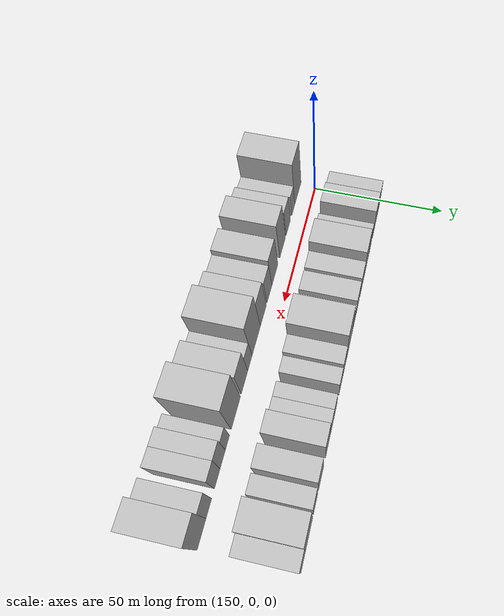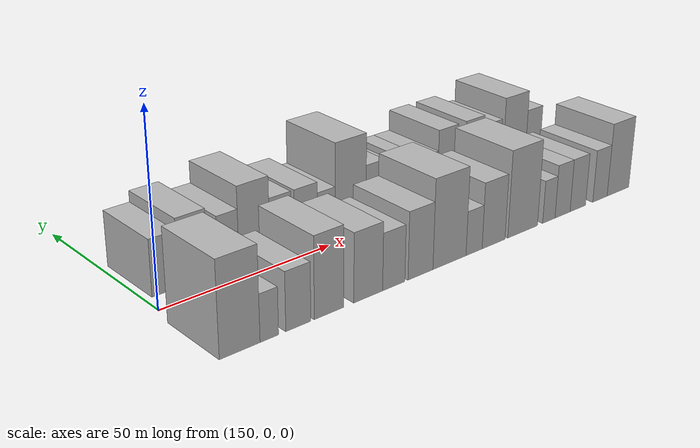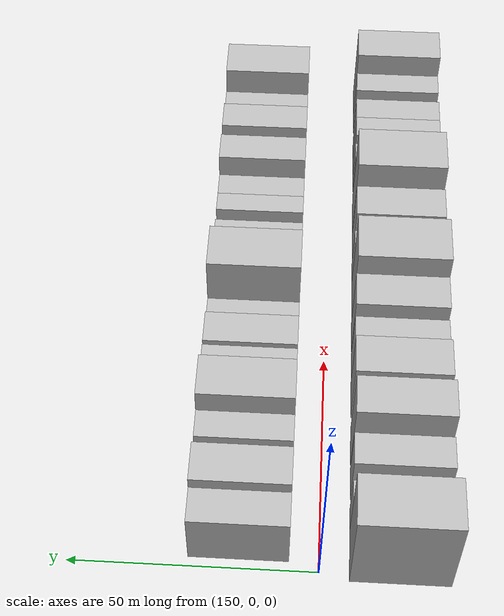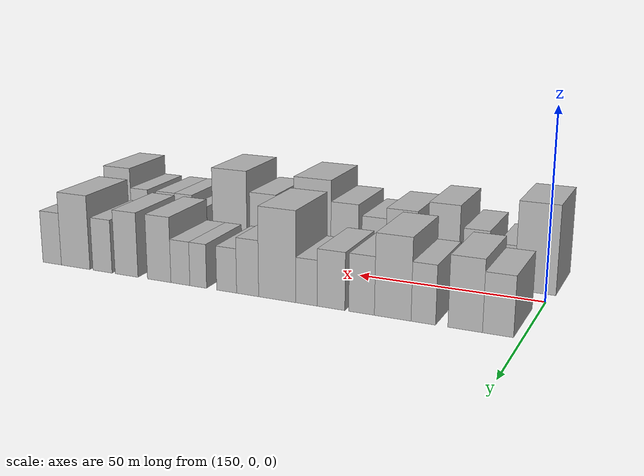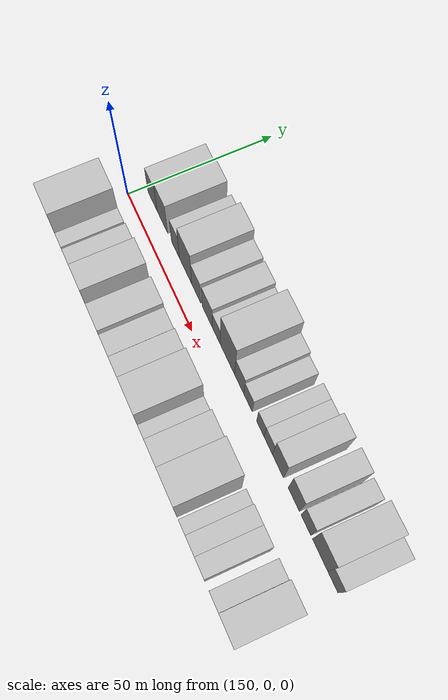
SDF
<sdf version="1.6">
 <world name="default">
  <model name="building_16">
   <static>1</static>
   <pose>155.6822 16.0000 0 0.000000 0.000000 1.570796</pose>
   <link name="link">
    <pose>0 0 7.50 0 0 0</pose>
    <collision name="collision"><geometry><box><size>20.0000 7.2989 15.0000</size></box></geometry></collision>
    <visual name="visual">
     <cast_shadows>0</cast_shadows>
     <geometry><box><size>20.0000 7.2989 15.0000</size></box></geometry>
     <material>
      <script>
       <uri>model://HANNAS_wall/materials/scripts</uri>
       <uri>model://HANNAS_wall/materials/textures</uri>
       <name>vrc/HANNAS_wall</name>
      </script>
     </material>
    </visual>
   </link>
  </model>
  <model name="building_17">
   <static>1</static>
   <pose>163.4981 16.0000 0 0.000000 0.000000 1.570796</pose>
   <link name="link">
    <pose>0 0 9.00 0 0 0</pose>
    <collision name="collision"><geometry><box><size>20.0000 8.3329 18.0000</size></box></geometry></collision>
    <visual name="visual">
     <cast_shadows>0</cast_shadows>
     <geometry><box><size>20.0000 8.3329 18.0000</size></box></geometry>
     <material>
      <script>
       <uri>model://HANNAS_wall/materials/scripts</uri>
       <uri>model://HANNAS_wall/materials/textures</uri>
       <name>vrc/HANNAS_wall</name>
      </script>
     </material>
    </visual>
   </link>
  </model>
  <model name="building_18">
   <static>1</static>
   <pose>173.7253 16.0000 0 0.000000 0.000000 1.570796</pose>
   <link name="link">
    <pose>0 0 7.50 0 0 0</pose>
    <collision name="collision"><geometry><box><size>20.0000 6.1214 15.0000</size></box></geometry></collision>
    <visual name="visual">
     <cast_shadows>0</cast_shadows>
     <geometry><box><size>20.0000 6.1214 15.0000</size></box></geometry>
     <material>
      <script>
       <uri>model://HANNAS_wall/materials/scripts</uri>
       <uri>model://HANNAS_wall/materials/textures</uri>
       <name>vrc/HANNAS_wall</name>
      </script>
     </material>
    </visual>
   </link>
  </model>
  <model name="building_19">
   <static>1</static>
   <pose>181.4577 16.0000 0 0.000000 0.000000 1.570796</pose>
   <link name="link">
    <pose>0 0 10.50 0 0 0</pose>
    <collision name="collision"><geometry><box><size>20.0000 9.3434 21.0000</size></box></geometry></collision>
    <visual name="visual">
     <cast_shadows>0</cast_shadows>
     <geometry><box><size>20.0000 9.3434 21.0000</size></box></geometry>
     <material>
      <script>
       <uri>model://HANNAS_wall/materials/scripts</uri>
       <uri>model://HANNAS_wall/materials/textures</uri>
       <name>vrc/HANNAS_wall</name>
      </script>
     </material>
    </visual>
   </link>
  </model>
  <model name="building_20">
   <static>1</static>
   <pose>189.4932 16.0000 0 0.000000 0.000000 1.570796</pose>
   <link name="link">
    <pose>0 0 7.50 0 0 0</pose>
    <collision name="collision"><geometry><box><size>20.0000 6.7278 15.0000</size></box></geometry></collision>
    <visual name="visual">
     <cast_shadows>0</cast_shadows>
     <geometry><box><size>20.0000 6.7278 15.0000</size></box></geometry>
     <material>
      <script>
       <uri>model://HANNAS_wall/materials/scripts</uri>
       <uri>model://HANNAS_wall/materials/textures</uri>
       <name>vrc/HANNAS_wall</name>
      </script>
     </material>
    </visual>
   </link>
  </model>
  <model name="building_21">
   <static>1</static>
   <pose>197.5822 16.0000 0 0.000000 0.000000 1.570796</pose>
   <link name="link">
    <pose>0 0 7.50 0 0 0</pose>
    <collision name="collision"><geometry><box><size>20.0000 7.4502 15.0000</size></box></geometry></collision>
    <visual name="visual">
     <cast_shadows>0</cast_shadows>
     <geometry><box><size>20.0000 7.4502 15.0000</size></box></geometry>
     <material>
      <script>
       <uri>model://HANNAS_wall/materials/scripts</uri>
       <uri>model://HANNAS_wall/materials/textures</uri>
       <name>vrc/HANNAS_wall</name>
      </script>
     </material>
    </visual>
   </link>
  </model>
  <model name="building_22">
   <static>1</static>
   <pose>204.2305 16.0000 0 0.000000 0.000000 1.570796</pose>
   <link name="link">
    <pose>0 0 6.00 0 0 0</pose>
    <collision name="collision"><geometry><box><size>20.0000 5.8465 12.0000</size></box></geometry></collision>
    <visual name="visual">
     <cast_shadows>0</cast_shadows>
     <geometry><box><size>20.0000 5.8465 12.0000</size></box></geometry>
     <material>
      <script>
       <uri>model://HANNAS_wall/materials/scripts</uri>
       <uri>model://HANNAS_wall/materials/textures</uri>
       <name>vrc/HANNAS_wall</name>
      </script>
     </material>
    </visual>
   </link>
  </model>
  <model name="building_23">
   <static>1</static>
   <pose>212.3700 16.0000 0 0.000000 0.000000 1.570796</pose>
   <link name="link">
    <pose>0 0 12.00 0 0 0</pose>
    <collision name="collision"><geometry><box><size>20.0000 10.4324 24.0000</size></box></geometry></collision>
    <visual name="visual">
     <cast_shadows>0</cast_shadows>
     <geometry><box><size>20.0000 10.4324 24.0000</size></box></geometry>
     <material>
      <script>
       <uri>model://HANNAS_wall/materials/scripts</uri>
       <uri>model://HANNAS_wall/materials/textures</uri>
       <name>vrc/HANNAS_wall</name>
      </script>
     </material>
    </visual>
   </link>
  </model>
  <model name="building_24">
   <static>1</static>
   <pose>220.7596 16.0000 0 0.000000 0.000000 1.570796</pose>
   <link name="link">
    <pose>0 0 7.50 0 0 0</pose>
    <collision name="collision"><geometry><box><size>20.0000 6.3466 15.0000</size></box></geometry></collision>
    <visual name="visual">
     <cast_shadows>0</cast_shadows>
     <geometry><box><size>20.0000 6.3466 15.0000</size></box></geometry>
     <material>
      <script>
       <uri>model://HANNAS_wall/materials/scripts</uri>
       <uri>model://HANNAS_wall/materials/textures</uri>
       <name>vrc/HANNAS_wall</name>
      </script>
     </material>
    </visual>
   </link>
  </model>
  <model name="building_25">
   <static>1</static>
   <pose>226.8524 16.0000 0 0.000000 0.000000 1.570796</pose>
   <link name="link">
    <pose>0 0 6.00 0 0 0</pose>
    <collision name="collision"><geometry><box><size>20.0000 5.8391 12.0000</size></box></geometry></collision>
    <visual name="visual">
     <cast_shadows>0</cast_shadows>
     <geometry><box><size>20.0000 5.8391 12.0000</size></box></geometry>
     <material>
      <script>
       <uri>model://HANNAS_wall/materials/scripts</uri>
       <uri>model://HANNAS_wall/materials/textures</uri>
       <name>vrc/HANNAS_wall</name>
      </script>
     </material>
    </visual>
   </link>
  </model>
  <model name="building_26">
   <static>1</static>
   <pose>235.2844 16.0000 0 0.000000 0.000000 1.570796</pose>
   <link name="link">
    <pose>0 0 6.00 0 0 0</pose>
    <collision name="collision"><geometry><box><size>20.0000 5.0248 12.0000</size></box></geometry></collision>
    <visual name="visual">
     <cast_shadows>0</cast_shadows>
     <geometry><box><size>20.0000 5.0248 12.0000</size></box></geometry>
     <material>
      <script>
       <uri>model://HANNAS_wall/materials/scripts</uri>
       <uri>model://HANNAS_wall/materials/textures</uri>
       <name>vrc/HANNAS_wall</name>
      </script>
     </material>
    </visual>
   </link>
  </model>
  <model name="building_27">
   <static>1</static>
   <pose>240.6908 16.0000 0 0.000000 0.000000 1.570796</pose>
   <link name="link">
    <pose>0 0 6.00 0 0 0</pose>
    <collision name="collision"><geometry><box><size>20.0000 5.7879 12.0000</size></box></geometry></collision>
    <visual name="visual">
     <cast_shadows>0</cast_shadows>
     <geometry><box><size>20.0000 5.7879 12.0000</size></box></geometry>
     <material>
      <script>
       <uri>model://HANNAS_wall/materials/scripts</uri>
       <uri>model://HANNAS_wall/materials/textures</uri>
       <name>vrc/HANNAS_wall</name>
      </script>
     </material>
    </visual>
   </link>
  </model>
  <model name="building_28">
   <static>1</static>
   <pose>247.2457 16.0000 0 0.000000 0.000000 1.570796</pose>
   <link name="link">
    <pose>0 0 9.00 0 0 0</pose>
    <collision name="collision"><geometry><box><size>20.0000 7.3219 18.0000</size></box></geometry></collision>
    <visual name="visual">
     <cast_shadows>0</cast_shadows>
     <geometry><box><size>20.0000 7.3219 18.0000</size></box></geometry>
     <material>
      <script>
       <uri>model://HANNAS_wall/materials/scripts</uri>
       <uri>model://HANNAS_wall/materials/textures</uri>
       <name>vrc/HANNAS_wall</name>
      </script>
     </material>
    </visual>
   </link>
  </model>
  <model name="building_29">
   <static>1</static>
   <pose>257.5737 16.0000 0 0.000000 0.000000 1.570796</pose>
   <link name="link">
    <pose>0 0 9.00 0 0 0</pose>
    <collision name="collision"><geometry><box><size>20.0000 7.3342 18.0000</size></box></geometry></collision>
    <visual name="visual">
     <cast_shadows>0</cast_shadows>
     <geometry><box><size>20.0000 7.3342 18.0000</size></box></geometry>
     <material>
      <script>
       <uri>model://HANNAS_wall/materials/scripts</uri>
       <uri>model://HANNAS_wall/materials/textures</uri>
       <name>vrc/HANNAS_wall</name>
      </script>
     </material>
    </visual>
   </link>
  </model>
  <model name="building_30">
   <static>1</static>
   <pose>265.3771 16.0000 0 0.000000 0.000000 1.570796</pose>
   <link name="link">
    <pose>0 0 7.50 0 0 0</pose>
    <collision name="collision"><geometry><box><size>20.0000 6.2727 15.0000</size></box></geometry></collision>
    <visual name="visual">
     <cast_shadows>0</cast_shadows>
     <geometry><box><size>20.0000 6.2727 15.0000</size></box></geometry>
     <material>
      <script>
       <uri>model://HANNAS_wall/materials/scripts</uri>
       <uri>model://HANNAS_wall/materials/textures</uri>
       <name>vrc/HANNAS_wall</name>
      </script>
     </material>
    </visual>
   </link>
  </model>
  <model name="building_31">
   <static>1</static>
   <pose>274.3056 16.0000 0 0.000000 0.000000 1.570796</pose>
   <link name="link">
    <pose>0 0 10.50 0 0 0</pose>
    <collision name="collision"><geometry><box><size>20.0000 9.5843 21.0000</size></box></geometry></collision>
    <visual name="visual">
     <cast_shadows>0</cast_shadows>
     <geometry><box><size>20.0000 9.5843 21.0000</size></box></geometry>
     <material>
      <script>
       <uri>model://HANNAS_wall/materials/scripts</uri>
       <uri>model://HANNAS_wall/materials/textures</uri>
       <name>vrc/HANNAS_wall</name>
      </script>
     </material>
    </visual>
   </link>
  </model>
  <model name="building_32">
   <static>1</static>
   <pose>282.2590 16.0000 0 0.000000 0.000000 1.570796</pose>
   <link name="link">
    <pose>0 0 7.50 0 0 0</pose>
    <collision name="collision"><geometry><box><size>20.0000 6.3225 15.0000</size></box></geometry></collision>
    <visual name="visual">
     <cast_shadows>0</cast_shadows>
     <geometry><box><size>20.0000 6.3225 15.0000</size></box></geometry>
     <material>
      <script>
       <uri>model://HANNAS_wall/materials/scripts</uri>
       <uri>model://HANNAS_wall/materials/textures</uri>
       <name>vrc/HANNAS_wall</name>
      </script>
     </material>
    </visual>
   </link>
  </model>
  <model name="building_48">
   <static>1</static>
   <pose>153.9124 -16.0000 0 0.000000 0.000000 1.570796</pose>
   <link name="link">
    <pose>0 0 12.00 0 0 0</pose>
    <collision name="collision"><geometry><box><size>20.0000 10.7325 24.0000</size></box></geometry></collision>
    <visual name="visual">
     <cast_shadows>0</cast_shadows>
     <geometry><box><size>20.0000 10.7325 24.0000</size></box></geometry>
     <material>
      <script>
       <uri>model://HANNAS_wall/materials/scripts</uri>
       <uri>model://HANNAS_wall/materials/textures</uri>
       <name>vrc/HANNAS_wall</name>
      </script>
     </material>
    </visual>
   </link>
  </model>
  <model name="building_49">
   <static>1</static>
   <pose>161.7988 -16.0000 0 0.000000 0.000000 1.570796</pose>
   <link name="link">
    <pose>0 0 6.00 0 0 0</pose>
    <collision name="collision"><geometry><box><size>20.0000 5.0403 12.0000</size></box></geometry></collision>
    <visual name="visual">
     <cast_shadows>0</cast_shadows>
     <geometry><box><size>20.0000 5.0403 12.0000</size></box></geometry>
     <material>
      <script>
       <uri>model://HANNAS_wall/materials/scripts</uri>
       <uri>model://HANNAS_wall/materials/textures</uri>
       <name>vrc/HANNAS_wall</name>
      </script>
     </material>
    </visual>
   </link>
  </model>
  <model name="building_50">
   <static>1</static>
   <pose>169.8410 -16.0000 0 0.000000 0.000000 1.570796</pose>
   <link name="link">
    <pose>0 0 7.50 0 0 0</pose>
    <collision name="collision"><geometry><box><size>20.0000 7.0441 15.0000</size></box></geometry></collision>
    <visual name="visual">
     <cast_shadows>0</cast_shadows>
     <geometry><box><size>20.0000 7.0441 15.0000</size></box></geometry>
     <material>
      <script>
       <uri>model://HANNAS_wall/materials/scripts</uri>
       <uri>model://HANNAS_wall/materials/textures</uri>
       <name>vrc/HANNAS_wall</name>
      </script>
     </material>
    </visual>
   </link>
  </model>
  <model name="building_51">
   <static>1</static>
   <pose>178.6703 -16.0000 0 0.000000 0.000000 1.570796</pose>
   <link name="link">
    <pose>0 0 10.50 0 0 0</pose>
    <collision name="collision"><geometry><box><size>20.0000 8.6146 21.0000</size></box></geometry></collision>
    <visual name="visual">
     <cast_shadows>0</cast_shadows>
     <geometry><box><size>20.0000 8.6146 21.0000</size></box></geometry>
     <material>
      <script>
       <uri>model://HANNAS_wall/materials/scripts</uri>
       <uri>model://HANNAS_wall/materials/textures</uri>
       <name>vrc/HANNAS_wall</name>
      </script>
     </material>
    </visual>
   </link>
  </model>
  <model name="building_52">
   <static>1</static>
   <pose>190.4053 -16.0000 0 0.000000 0.000000 1.570796</pose>
   <link name="link">
    <pose>0 0 9.00 0 0 0</pose>
    <collision name="collision"><geometry><box><size>20.0000 8.8554 18.0000</size></box></geometry></collision>
    <visual name="visual">
     <cast_shadows>0</cast_shadows>
     <geometry><box><size>20.0000 8.8554 18.0000</size></box></geometry>
     <material>
      <script>
       <uri>model://HANNAS_wall/materials/scripts</uri>
       <uri>model://HANNAS_wall/materials/textures</uri>
       <name>vrc/HANNAS_wall</name>
      </script>
     </material>
    </visual>
   </link>
  </model>
  <model name="building_53">
   <static>1</static>
   <pose>198.3658 -16.0000 0 0.000000 0.000000 1.570796</pose>
   <link name="link">
    <pose>0 0 7.50 0 0 0</pose>
    <collision name="collision"><geometry><box><size>20.0000 7.0656 15.0000</size></box></geometry></collision>
    <visual name="visual">
     <cast_shadows>0</cast_shadows>
     <geometry><box><size>20.0000 7.0656 15.0000</size></box></geometry>
     <material>
      <script>
       <uri>model://HANNAS_wall/materials/scripts</uri>
       <uri>model://HANNAS_wall/materials/textures</uri>
       <name>vrc/HANNAS_wall</name>
      </script>
     </material>
    </visual>
   </link>
  </model>
  <model name="building_54">
   <static>1</static>
   <pose>206.9950 -16.0000 0 0.000000 0.000000 1.570796</pose>
   <link name="link">
    <pose>0 0 9.00 0 0 0</pose>
    <collision name="collision"><geometry><box><size>20.0000 8.1928 18.0000</size></box></geometry></collision>
    <visual name="visual">
     <cast_shadows>0</cast_shadows>
     <geometry><box><size>20.0000 8.1928 18.0000</size></box></geometry>
     <material>
      <script>
       <uri>model://HANNAS_wall/materials/scripts</uri>
       <uri>model://HANNAS_wall/materials/textures</uri>
       <name>vrc/HANNAS_wall</name>
      </script>
     </material>
    </visual>
   </link>
  </model>
  <model name="building_55">
   <static>1</static>
   <pose>216.7423 -16.0000 0 0.000000 0.000000 1.570796</pose>
   <link name="link">
    <pose>0 0 12.00 0 0 0</pose>
    <collision name="collision"><geometry><box><size>20.0000 11.3019 24.0000</size></box></geometry></collision>
    <visual name="visual">
     <cast_shadows>0</cast_shadows>
     <geometry><box><size>20.0000 11.3019 24.0000</size></box></geometry>
     <material>
      <script>
       <uri>model://HANNAS_wall/materials/scripts</uri>
       <uri>model://HANNAS_wall/materials/textures</uri>
       <name>vrc/HANNAS_wall</name>
      </script>
     </material>
    </visual>
   </link>
  </model>
  <model name="building_56">
   <static>1</static>
   <pose>225.2256 -16.0000 0 0.000000 0.000000 1.570796</pose>
   <link name="link">
    <pose>0 0 6.00 0 0 0</pose>
    <collision name="collision"><geometry><box><size>20.0000 5.6646 12.0000</size></box></geometry></collision>
    <visual name="visual">
     <cast_shadows>0</cast_shadows>
     <geometry><box><size>20.0000 5.6646 12.0000</size></box></geometry>
     <material>
      <script>
       <uri>model://HANNAS_wall/materials/scripts</uri>
       <uri>model://HANNAS_wall/materials/textures</uri>
       <name>vrc/HANNAS_wall</name>
      </script>
     </material>
    </visual>
   </link>
  </model>
  <model name="building_57">
   <static>1</static>
   <pose>232.2070 -16.0000 0 0.000000 0.000000 1.570796</pose>
   <link name="link">
    <pose>0 0 9.00 0 0 0</pose>
    <collision name="collision"><geometry><box><size>20.0000 8.2982 18.0000</size></box></geometry></collision>
    <visual name="visual">
     <cast_shadows>0</cast_shadows>
     <geometry><box><size>20.0000 8.2982 18.0000</size></box></geometry>
     <material>
      <script>
       <uri>model://HANNAS_wall/materials/scripts</uri>
       <uri>model://HANNAS_wall/materials/textures</uri>
       <name>vrc/HANNAS_wall</name>
      </script>
     </material>
    </visual>
   </link>
  </model>
  <model name="building_58">
   <static>1</static>
   <pose>242.9613 -16.0000 0 0.000000 0.000000 1.570796</pose>
   <link name="link">
    <pose>0 0 12.00 0 0 0</pose>
    <collision name="collision"><geometry><box><size>20.0000 11.2104 24.0000</size></box></geometry></collision>
    <visual name="visual">
     <cast_shadows>0</cast_shadows>
     <geometry><box><size>20.0000 11.2104 24.0000</size></box></geometry>
     <material>
      <script>
       <uri>model://HANNAS_wall/materials/scripts</uri>
       <uri>model://HANNAS_wall/materials/textures</uri>
       <name>vrc/HANNAS_wall</name>
      </script>
     </material>
    </visual>
   </link>
  </model>
  <model name="building_59">
   <static>1</static>
   <pose>252.9781 -16.0000 0 0.000000 0.000000 1.570796</pose>
   <link name="link">
    <pose>0 0 6.00 0 0 0</pose>
    <collision name="collision"><geometry><box><size>20.0000 4.8233 12.0000</size></box></geometry></collision>
    <visual name="visual">
     <cast_shadows>0</cast_shadows>
     <geometry><box><size>20.0000 4.8233 12.0000</size></box></geometry>
     <material>
      <script>
       <uri>model://HANNAS_wall/materials/scripts</uri>
       <uri>model://HANNAS_wall/materials/textures</uri>
       <name>vrc/HANNAS_wall</name>
      </script>
     </material>
    </visual>
   </link>
  </model>
  <model name="building_60">
   <static>1</static>
   <pose>258.3930 -16.0000 0 0.000000 0.000000 1.570796</pose>
   <link name="link">
    <pose>0 0 7.50 0 0 0</pose>
    <collision name="collision"><geometry><box><size>20.0000 6.0065 15.0000</size></box></geometry></collision>
    <visual name="visual">
     <cast_shadows>0</cast_shadows>
     <geometry><box><size>20.0000 6.0065 15.0000</size></box></geometry>
     <material>
      <script>
       <uri>model://HANNAS_wall/materials/scripts</uri>
       <uri>model://HANNAS_wall/materials/textures</uri>
       <name>vrc/HANNAS_wall</name>
      </script>
     </material>
    </visual>
   </link>
  </model>
  <model name="building_61">
   <static>1</static>
   <pose>264.5484 -16.0000 0 0.000000 0.000000 1.570796</pose>
   <link name="link">
    <pose>0 0 7.50 0 0 0</pose>
    <collision name="collision"><geometry><box><size>20.0000 6.3042 15.0000</size></box></geometry></collision>
    <visual name="visual">
     <cast_shadows>0</cast_shadows>
     <geometry><box><size>20.0000 6.3042 15.0000</size></box></geometry>
     <material>
      <script>
       <uri>model://HANNAS_wall/materials/scripts</uri>
       <uri>model://HANNAS_wall/materials/textures</uri>
       <name>vrc/HANNAS_wall</name>
      </script>
     </material>
    </visual>
   </link>
  </model>
  <model name="building_62">
   <static>1</static>
   <pose>273.7282 -16.0000 0 0.000000 0.000000 1.570796</pose>
   <link name="link">
    <pose>0 0 7.50 0 0 0</pose>
    <collision name="collision"><geometry><box><size>20.0000 6.0553 15.0000</size></box></geometry></collision>
    <visual name="visual">
     <cast_shadows>0</cast_shadows>
     <geometry><box><size>20.0000 6.0553 15.0000</size></box></geometry>
     <material>
      <script>
       <uri>model://HANNAS_wall/materials/scripts</uri>
       <uri>model://HANNAS_wall/materials/textures</uri>
       <name>vrc/HANNAS_wall</name>
      </script>
     </material>
    </visual>
   </link>
  </model>
  <model name="building_63">
   <static>1</static>
   <pose>281.4122 -16.0000 0 0.000000 0.000000 1.570796</pose>
   <link name="link">
    <pose>0 0 10.50 0 0 0</pose>
    <collision name="collision"><geometry><box><size>20.0000 9.3127 21.0000</size></box></geometry></collision>
    <visual name="visual">
     <cast_shadows>0</cast_shadows>
     <geometry><box><size>20.0000 9.3127 21.0000</size></box></geometry>
     <material>
      <script>
       <uri>model://HANNAS_wall/materials/scripts</uri>
       <uri>model://HANNAS_wall/materials/textures</uri>
       <name>vrc/HANNAS_wall</name>
      </script>
     </material>
    </visual>
   </link>
  </model>
 </world>
</sdf>
